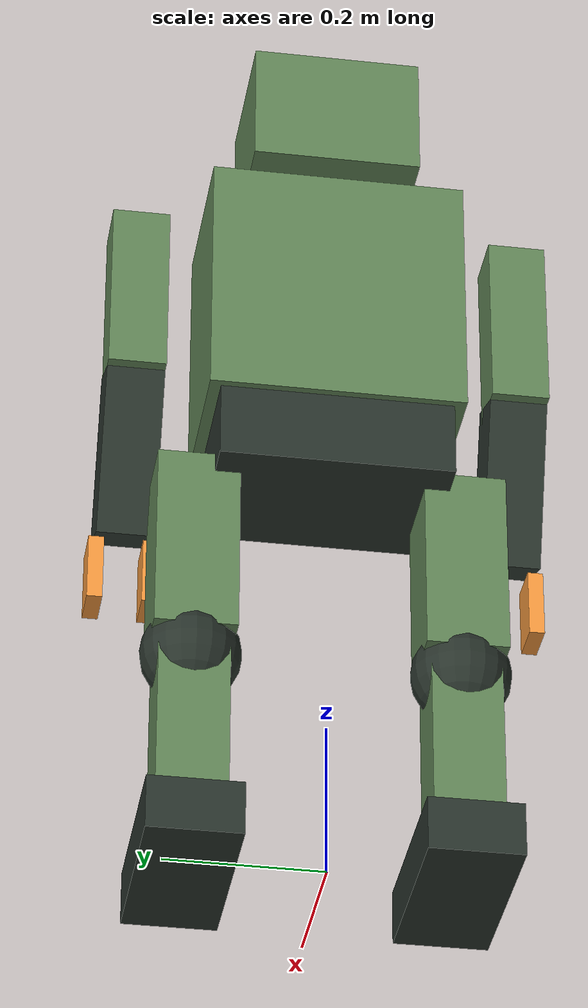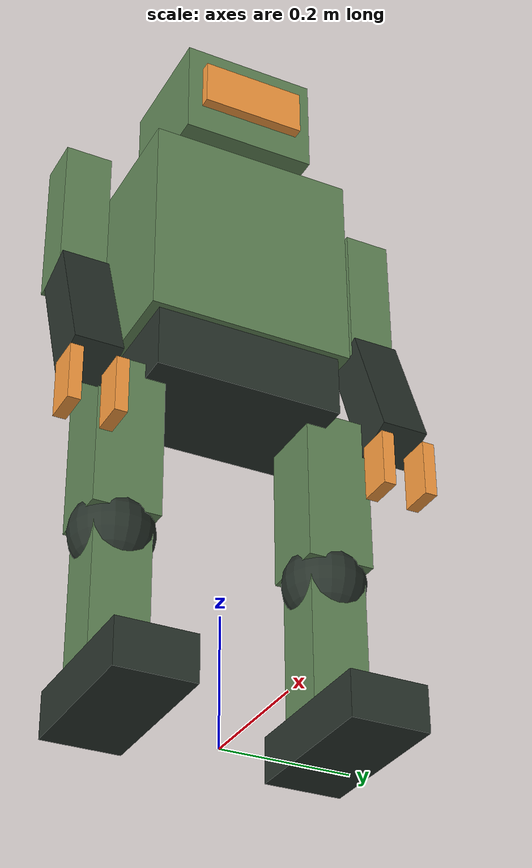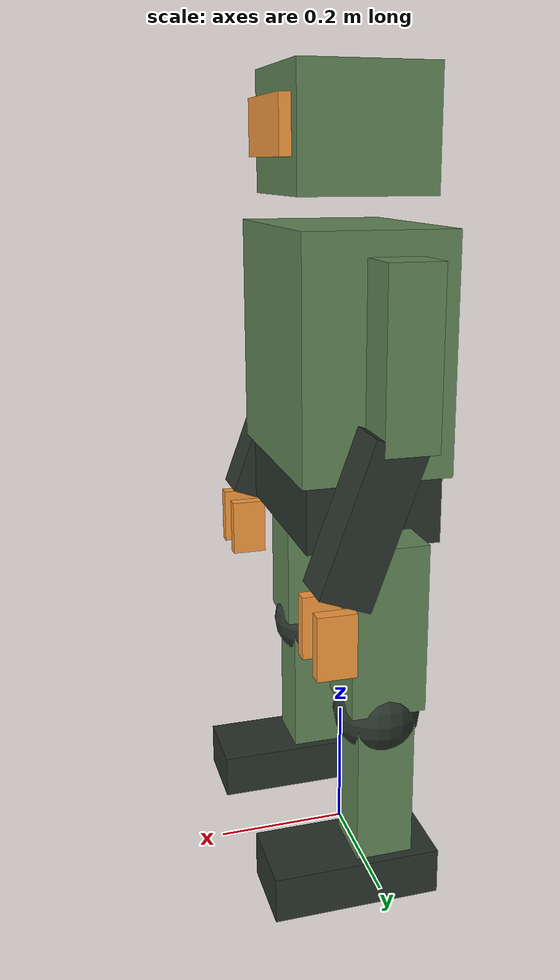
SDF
<?xml version='1.0' encoding='utf-8'?>
<sdf version="1.10">
  <model name="robot">
    <static>true</static>
    <link name="base_link">
      <visual name="torso">
        <pose>0 0 0.8 0 0 0</pose>
        <geometry>
          <box>
            <size>0.22 0.33 0.34</size>
          </box>
        </geometry>
        <material>
          <diffuse>0.38 0.52 0.34 1</diffuse>
        </material>
      </visual>
      <visual name="waist">
        <pose>0 0 0.59 0 0 0</pose>
        <geometry>
          <box>
            <size>0.2 0.3 0.12</size>
          </box>
        </geometry>
        <material>
          <diffuse>0.16 0.2 0.17 1</diffuse>
        </material>
      </visual>
      <visual name="head">
        <pose>0 0 1.095 0 0 0</pose>
        <geometry>
          <box>
            <size>0.2 0.22 0.17</size>
          </box>
        </geometry>
        <material>
          <diffuse>0.38 0.52 0.34 1</diffuse>
        </material>
      </visual>
      <visual name="face">
        <pose>0.108 0 1.1 0 0 0</pose>
        <geometry>
          <box>
            <size>0.018 0.17 0.08</size>
          </box>
        </geometry>
        <material>
          <diffuse>0.96 0.6 0.24 1</diffuse>
        </material>
      </visual>
      <visual name="thigh_-0.17">
        <pose>0 -0.17 0.43 0 0 0</pose>
        <geometry>
          <box>
            <size>0.11 0.105 0.25</size>
          </box>
        </geometry>
        <material>
          <diffuse>0.38 0.52 0.34 1</diffuse>
        </material>
      </visual>
      <visual name="knee_-0.17">
        <pose>0 -0.17 0.29 0 0 0</pose>
        <geometry>
          <sphere>
            <radius>0.064</radius>
          </sphere>
        </geometry>
        <material>
          <diffuse>0.16 0.2 0.17 1</diffuse>
        </material>
      </visual>
      <visual name="shin_-0.17">
        <pose>0 -0.17 0.17 0 0 0</pose>
        <geometry>
          <box>
            <size>0.085 0.09 0.23</size>
          </box>
        </geometry>
        <material>
          <diffuse>0.38 0.52 0.34 1</diffuse>
        </material>
      </visual>
      <visual name="foot_-0.17">
        <pose>0.045 -0.17 0.035 0 0 0</pose>
        <geometry>
          <box>
            <size>0.25 0.12 0.07</size>
          </box>
        </geometry>
        <material>
          <diffuse>0.16 0.2 0.17 1</diffuse>
        </material>
      </visual>
      <visual name="thigh_0.17">
        <pose>0 0.17 0.43 0 0 0</pose>
        <geometry>
          <box>
            <size>0.11 0.105 0.25</size>
          </box>
        </geometry>
        <material>
          <diffuse>0.38 0.52 0.34 1</diffuse>
        </material>
      </visual>
      <visual name="knee_0.17">
        <pose>0 0.17 0.29 0 0 0</pose>
        <geometry>
          <sphere>
            <radius>0.064</radius>
          </sphere>
        </geometry>
        <material>
          <diffuse>0.16 0.2 0.17 1</diffuse>
        </material>
      </visual>
      <visual name="shin_0.17">
        <pose>0 0.17 0.17 0 0 0</pose>
        <geometry>
          <box>
            <size>0.085 0.09 0.23</size>
          </box>
        </geometry>
        <material>
          <diffuse>0.38 0.52 0.34 1</diffuse>
        </material>
      </visual>
      <visual name="foot_0.17">
        <pose>0.045 0.17 0.035 0 0 0</pose>
        <geometry>
          <box>
            <size>0.25 0.12 0.07</size>
          </box>
        </geometry>
        <material>
          <diffuse>0.16 0.2 0.17 1</diffuse>
        </material>
      </visual>
      <visual name="upper_arm_-0.25">
        <pose>0 -0.25 0.82 0 0 0</pose>
        <geometry>
          <box>
            <size>0.075 0.075 0.24</size>
          </box>
        </geometry>
        <material>
          <diffuse>0.38 0.52 0.34 1</diffuse>
        </material>
      </visual>
      <visual name="forearm_-0.25">
        <pose>0.05 -0.25 0.61 0 -0.35 0</pose>
        <geometry>
          <box>
            <size>0.075 0.075 0.22</size>
          </box>
        </geometry>
        <material>
          <diffuse>0.16 0.2 0.17 1</diffuse>
        </material>
      </visual>
      <visual name="finger_-0.25_-0.035">
        <pose>0.1 -0.28500000000000003 0.455 0 0 0</pose>
        <geometry>
          <box>
            <size>0.055 0.02 0.09</size>
          </box>
        </geometry>
        <material>
          <diffuse>0.96 0.6 0.24 1</diffuse>
        </material>
      </visual>
      <visual name="finger_-0.25_0.035">
        <pose>0.1 -0.215 0.455 0 0 0</pose>
        <geometry>
          <box>
            <size>0.055 0.02 0.09</size>
          </box>
        </geometry>
        <material>
          <diffuse>0.96 0.6 0.24 1</diffuse>
        </material>
      </visual>
      <visual name="upper_arm_0.25">
        <pose>0 0.25 0.82 0 0 0</pose>
        <geometry>
          <box>
            <size>0.075 0.075 0.24</size>
          </box>
        </geometry>
        <material>
          <diffuse>0.38 0.52 0.34 1</diffuse>
        </material>
      </visual>
      <visual name="forearm_0.25">
        <pose>0.05 0.25 0.61 0 -0.35 0</pose>
        <geometry>
          <box>
            <size>0.075 0.075 0.22</size>
          </box>
        </geometry>
        <material>
          <diffuse>0.16 0.2 0.17 1</diffuse>
        </material>
      </visual>
      <visual name="finger_0.25_-0.035">
        <pose>0.1 0.215 0.455 0 0 0</pose>
        <geometry>
          <box>
            <size>0.055 0.02 0.09</size>
          </box>
        </geometry>
        <material>
          <diffuse>0.96 0.6 0.24 1</diffuse>
        </material>
      </visual>
      <visual name="finger_0.25_0.035">
        <pose>0.1 0.28500000000000003 0.455 0 0 0</pose>
        <geometry>
          <box>
            <size>0.055 0.02 0.09</size>
          </box>
        </geometry>
        <material>
          <diffuse>0.96 0.6 0.24 1</diffuse>
        </material>
      </visual>
    </link>
  </model>
</sdf>
